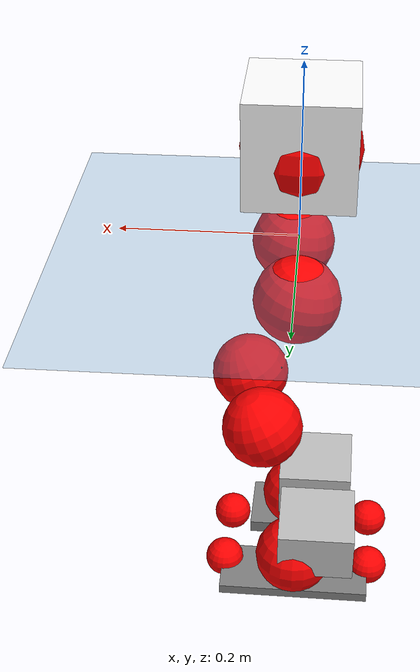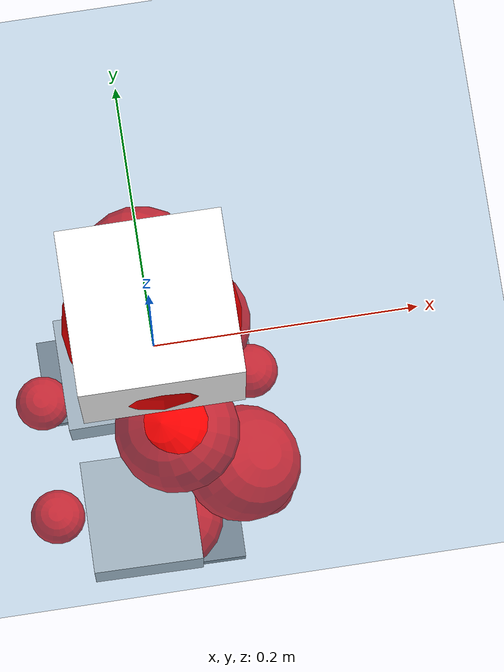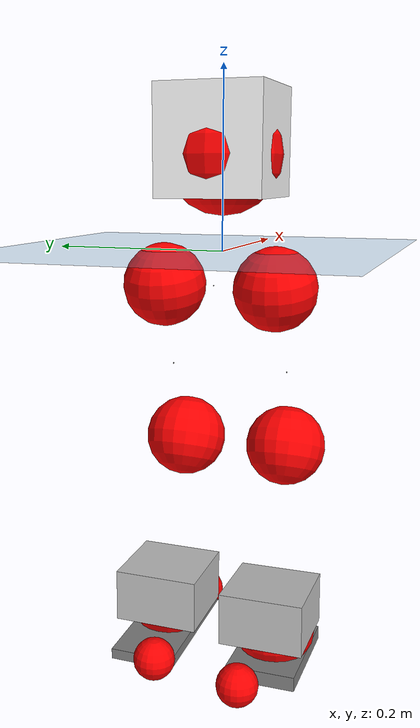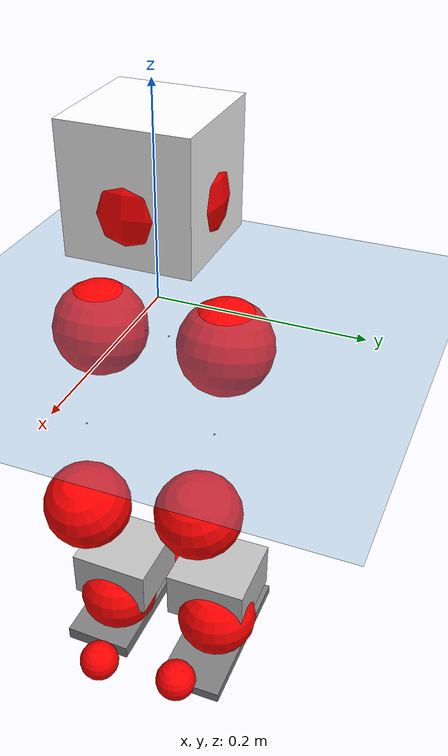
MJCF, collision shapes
<mujoco model="pi_12dof_release_v1">
  <compiler angle="radian" assetdir="assets" balanceinertia="true" inertiafromgeom="false"/>

  <option timestep="0.005" density="1.2" viscosity="2e-05"/>

  <size nkey="1"/>

  <visual>
    <quality shadowsize="8192"/>
    <map shadowclip="0.5"/>
  </visual>

  <default>
    <default class="/">
      <joint armature="0.01" damping="0.01" frictionloss="0.01"/>
      <geom contype="0" conaffinity="0" group="1" solref="-1000 -80"/>
      <site size="0.01 0.005 0.005" group="5"/>
      <general forcelimited="true" biastype="affine" gainprm="20" biasprm="0 -20 -0.5"/>
      <default class="foot">
        <geom size="0.0845 0.036 0.005" type="box" condim="6" group="4" priority="1" friction="0.9 0.2 0.2" solimp="0.015 1 0.005"/>
      </default>
      <default class="reward_collision_sphere">
        <geom group="5" rgba="1 0 0 1"/>
      </default>
    </default>
  </default>

  <asset>
    <texture type="skybox" colorspace="auto" name="//unnamed_texture_0" builtin="gradient" rgb1="0.95 0.95 0.95" rgb2="0.95 0.95 0.95" width="100" height="600"/>
    <texture type="2d" colorspace="auto" name="texplane" builtin="checker" rgb1="0.345 0.575 0.748" rgb2="0.345 0.575 0.748" markrgb="1 1 1" width="512" height="512"/>
    <material name="MatPlane" class="/" texture="texplane" texuniform="true" texrepeat="2 2" specular="0.9"/>
    <mesh name="baselink_1" class="/" file="baselink_1.STL"/>
    <mesh name="r_hip_pitch_link" class="/" file="r_hip_pitch_link.STL"/>
    <mesh name="r_hip_roll_link" class="/" file="r_hip_roll_link.STL"/>
    <mesh name="r_thigh_link" class="/" file="r_thigh_link.STL"/>
    <mesh name="r_calf_link" class="/" file="r_calf_link.STL"/>
    <mesh name="r_ankle_pitch_link" class="/" file="r_ankle_pitch_link.STL"/>
    <mesh name="r_ankle_roll_link" class="/" file="r_ankle_roll_link.STL"/>
    <mesh name="l_hip_pitch_link" class="/" file="l_hip_pitch_link.STL"/>
    <mesh name="l_hip_roll_link" class="/" file="l_hip_roll_link.STL"/>
    <mesh name="l_thigh_link" class="/" file="l_thigh_link.STL"/>
    <mesh name="l_calf_link" class="/" file="l_calf_link.STL"/>
    <mesh name="l_ankle_pitch_link" class="/" file="l_ankle_pitch_link.STL"/>
    <mesh name="l_ankle_roll_link" class="/" file="l_ankle_roll_link.STL"/>
  </asset>

  <worldbody>
    <geom name="floor" class="/" size="100 100 0.125" type="plane" group="0" material="MatPlane"/>
    <light name="toplight_shadow" class="/" pos="0 0 5" dir="0.0990148 0.0990148 -0.990148" type="directional" ambient="0.04 0.04 0.04" diffuse="0.55 0.55 0.55" specular="0.12 0.12 0.12"/>
    <light name="toplight_fill" class="/" pos="0 0 5" dir="0.0990148 0.0990148 -0.990148" type="directional" castshadow="false" ambient="0.04 0.04 0.04" diffuse="0.3 0.3 0.3" specular="0.08 0.08 0.08"/>
    <body name="trunk" pos="0.000314721 -0.000430604 0.00804841" quat="1 -0.000546759 -6.06784e-05 -0.000159387">
      <inertial pos="0.00386184 -0.0118905 0.0465175" quat="0.695642 0.00803667 0.0107671 0.718263" mass="3.82601" diaginertia="0.0422446 0.00398615 0.0218377"/>
      <joint name="//unnamed_joint_0" type="free"/>
      <geom name="//unnamed_geom_1" class="/" type="mesh" density="0" rgba="1 1 1 1" mesh="baselink_1"/>
      <geom name="//unnamed_geom_2" class="/" size="0.0596321 0.0596321 0.0596321" pos="0 0 0.110328" type="box" rgba="1 1 1 1"/>
      <geom name="//unnamed_geom_3" class="reward_collision_sphere" size="0.0655953" pos="0 0 0.0965371"/>
      <site name="imu" class="/" pos="-0.0177247 0.0302154 -0.0195586" size="0.0119264"/>
      <camera name="track" class="/" pos="0 -1.67623 0" quat="0.707107 0.707107 0 0" mode="trackcom"/>
      <camera name="ego_camera" class="/" pos="0.102053 0 0.248238" quat="-0.5 -0.5 0.5 0.5"/>
      <body name="r_hip_pitch_link" pos="0.00262995 -0.0125091 -0.0458694" quat="0.992131 0.000124001 -0.125198 -0.00105705">
        <inertial pos="0.0114513 -0.0478081 0.00536424" quat="-0.0205993 0.703873 -0.0290843 0.709432" mass="0.669431" diaginertia="0.00052177 4.50386e-05 0.000395237"/>
        <joint name="r_hip_pitch_joint" class="/" pos="0 0 0" axis="0.0346737 -0.998263 -0.0476389" range="-1.72607 1.40175" armature="0.0156939" damping="0.0375915" frictionloss="0.0170606"/>
        <geom name="//unnamed_geom_4" class="/" type="mesh" density="0" rgba="0.75294 0.75294 0.75294 1" mesh="r_hip_pitch_link"/>
        <geom name="//unnamed_geom_5" class="/" size="0.000596321 0.000596321 0.000596321" type="box" rgba="0.75294 0.75294 0.75294 1"/>
        <body name="r_hip_roll_link" pos="0.00447249 -0.0468089 -0.00495316" quat="1 0.000159256 -0.000114767 0.000363615">
          <inertial pos="-0.00229592 -0.00201209 -0.0779409" quat="0.702896 -0.0810825 -0.0812608 0.701968" mass="0.726163" diaginertia="0.00151155 0.000115685 0.000840396"/>
          <joint name="r_hip_roll_joint" class="/" pos="0 0 0" axis="-0.999062 -0.0430877 0.00422521" stiffness="0.0228749" range="-0.132679 0.490447" armature="0.0124008" damping="0.0738434" frictionloss="0.00818761"/>
          <geom name="//unnamed_geom_6" class="/" type="mesh" density="0" rgba="0.75294 0.75294 0.75294 1" mesh="r_hip_roll_link"/>
          <geom name="//unnamed_geom_7" class="/" size="0.000596321 0.000596321 0.000596321" type="box" rgba="0.75294 0.75294 0.75294 1"/>
          <geom name="//unnamed_geom_8" class="reward_collision_sphere" size="0.0477057"/>
          <body name="r_thigh_link" pos="0.00480939 -0.00780828 -0.104409" quat="0.999984 -0.0027155 0.00496405 -0.000118083">
            <inertial pos="-0.000371511 0.0010419 -0.0678122" quat="0.736429 0.676513 0.00107547 0.000400412" mass="0.221505" diaginertia="0.000574144 4.05536e-05 0.000321782"/>
            <joint name="r_thigh_joint" class="/" pos="0 0 0" axis="-0.0105088 -0.000213311 -0.999945" range="-0.285424 0.75221" armature="0.00608767" damping="0" frictionloss="0.0127611"/>
            <geom name="//unnamed_geom_9" class="/" type="mesh" density="0" rgba="0.75294 0.75294 0.75294 1" mesh="r_thigh_link"/>
            <geom name="//unnamed_geom_10" class="/" size="0.000596321 0.000596321 0.000596321" type="box" rgba="0.75294 0.75294 0.75294 1"/>
            <body name="r_calf_link" pos="-0.00359224 0.004263 -0.0970222" quat="0.948042 -0.00292981 0.318112 -0.00352589">
              <inertial pos="-0.00255092 -0.00163519 -0.0951688" quat="0.999984 0.0031632 0.00325431 0.00331073" mass="1.50821" diaginertia="0.0185201 0.00175339 0.000853381"/>
              <joint name="r_calf_joint" class="/" pos="0 0 0" axis="-0.0280322 -0.997829 0.0595997" range="-1.55698 0.666453" armature="0.012884" damping="0.00921322" frictionloss="0.0135543"/>
              <geom name="//unnamed_geom_11" class="/" type="mesh" density="0" rgba="0.75294 0.75294 0.75294 1" mesh="r_calf_link"/>
              <geom name="//unnamed_geom_12" class="/" size="0.000596321 0.000596321 0.000596321" type="box" rgba="0.75294 0.75294 0.75294 1"/>
              <geom name="//unnamed_geom_13" class="reward_collision_sphere" size="0.0477057"/>
              <body name="r_ankle_pitch_link" pos="-0.0127229 -0.00616334 -0.191557" quat="0.980321 -0.000384398 -0.197408 -0.000460733">
                <inertial pos="0.00738864 0.00347067 -0.000409736" quat="0.00451787 0.707756 0.00427692 0.706429" mass="0.26691" diaginertia="0.00137207 8.12839e-05 0.000491737"/>
                <joint name="r_ankle_pitch_joint" class="/" pos="0 0 0" axis="0.0247471 -0.999663 0.00789448" stiffness="0.0233472" range="-1.1543 0.407365" armature="0.0114861" damping="0" frictionloss="0.00598284"/>
                <geom name="//unnamed_geom_14" class="/" type="mesh" density="0" rgba="0.75294 0.75294 0.75294 1" mesh="r_ankle_pitch_link"/>
                <geom name="//unnamed_geom_15" class="/" size="0.046513 0.0477057 0.029816" type="box" rgba="0.75294 0.75294 0.75294 1"/>
                <body name="r_ankle_roll_link" pos="0.0907514 0.000722698 -0.00595535" quat="1 0.00017491 0.000158243 -0.00063578">
                  <inertial pos="-0.0283399 0.00210682 -0.0324268" quat="0.569577 0.432305 0.425006 0.555035" mass="1.04655" diaginertia="0.0049306 0.000427053 0.00141457"/>
                  <joint name="r_ankle_roll_joint" class="/" pos="0 0 0" axis="-0.999966 -0.00760673 -0.00312719" range="-0.157481 0.173567" armature="0.0116278" damping="0.00207197" frictionloss="0.00423777"/>
                  <geom name="//unnamed_geom_16" class="/" type="mesh" density="0" rgba="0.75294 0.75294 0.75294 1" mesh="r_ankle_roll_link"/>
                  <geom name="//unnamed_geom_17" class="/" type="mesh" rgba="0.75294 0.75294 0.75294 1" mesh="r_ankle_roll_link"/>
                  <geom name="right_foot" class="foot" size="0.0637584 0.0401157 0.00832757" pos="-0.0693962 0 -0.0606804"/>
                  <geom name="//unnamed_geom_19" class="reward_collision_sphere" size="0.0477057" pos="-0.0680355 0 -0.027582"/>
                  <geom name="//unnamed_geom_20" class="reward_collision_sphere" size="0.0238528" pos="0.0204106 0.0167623 -0.055164"/>
                  <geom name="//unnamed_geom_21" class="reward_collision_sphere" size="0.0238528" pos="-0.163285 0.0167623 -0.055164"/>
                  <site name="right_foot" class="foot" pos="-0.0693962 0 -0.0606804" size="0.0119264"/>
                </body>
              </body>
            </body>
          </body>
        </body>
      </body>
      <body name="l_hip_pitch_link" pos="0.00190489 0.011161 -0.0472786" quat="0.992187 6.00167e-05 -0.124758 8.89445e-05">
        <inertial pos="0.00655085 0.0555385 -0.00136828" quat="0.0279855 0.712991 0.0445389 0.699197" mass="0.768906" diaginertia="0.000570011 3.92997e-05 0.000529938"/>
        <joint name="l_hip_pitch_joint" class="/" pos="0 0 0" axis="0.0056273 0.999923 0.0110715" range="-1.42904 1.9745" armature="0.00761148" damping="0" frictionloss="0.0177415"/>
        <geom name="//unnamed_geom_22" class="/" type="mesh" density="0" rgba="0.75294 0.75294 0.75294 1" mesh="l_hip_pitch_link"/>
        <geom name="//unnamed_geom_23" class="/" size="0.000596321 0.000596321 0.000596321" type="box" rgba="0.75294 0.75294 0.75294 1"/>
        <body name="l_hip_roll_link" pos="-0.00347099 0.0577132 0.000535046" quat="0.999996 0.00034672 -0.000472655 0.00282433">
          <inertial pos="0.000620676 0.00808505 -0.0862157" quat="0.693682 -0.0877275 -0.0930932 0.708832" mass="0.630975" diaginertia="0.00135142 0.000105876 0.000512641"/>
          <joint name="l_hip_roll_joint" class="/" pos="0 0 0" axis="-0.999698 -0.0141844 0.0200718" stiffness="0.0146997" range="-0.763674 0.345802" armature="0.0101565" damping="0" frictionloss="0.0119661"/>
          <geom name="//unnamed_geom_24" class="/" type="mesh" density="0" rgba="0.75294 0.75294 0.75294 1" mesh="l_hip_roll_link"/>
          <geom name="//unnamed_geom_25" class="/" size="0.000596321 0.000596321 0.000596321" type="box" rgba="0.75294 0.75294 0.75294 1"/>
          <geom name="//unnamed_geom_26" class="reward_collision_sphere" size="0.0477057"/>
          <body name="l_thigh_link" pos="-0.00891586 -0.00466148 -0.0959715" quat="0.999989 0.00439723 0.00122365 0.00146683">
            <inertial pos="-0.00892361 0.00240873 -0.0579106" quat="0.675097 0.737729 -0.000620526 -0.000107082" mass="0.179067" diaginertia="0.000500884 2.7896e-05 0.000197887"/>
            <joint name="l_thigh_joint" class="/" pos="0 0 0" axis="0.0117652 0.00103596 -0.99993" stiffness="0.00329891" range="-0.65282 0.494916" armature="0.0149678" damping="0" frictionloss="0.0167481"/>
            <geom name="//unnamed_geom_27" class="/" type="mesh" density="0" rgba="0.75294 0.75294 0.75294 1" mesh="l_thigh_link"/>
            <geom name="//unnamed_geom_28" class="/" size="0.000596321 0.000596321 0.000596321" type="box" rgba="0.75294 0.75294 0.75294 1"/>
            <body name="l_calf_link" pos="-0.00218545 -0.00900402 -0.0963258" quat="0.949076 0.00114826 0.315038 -0.00221054">
              <inertial pos="-0.00138777 -0.00217415 -0.0913238" quat="0.997762 0.0112889 -0.0648601 0.0117317" mass="1.55421" diaginertia="0.0163773 0.00168618 0.000943462"/>
              <joint name="l_calf_joint" class="/" pos="0 0 0" axis="-0.00557486 0.999958 0.00729573" range="-0.689244 1.75736" armature="0.0111024" damping="0" frictionloss="0.0161746"/>
              <geom name="//unnamed_geom_29" class="/" type="mesh" density="0" rgba="0.75294 0.75294 0.75294 1" mesh="l_calf_link"/>
              <geom name="//unnamed_geom_30" class="/" size="0.000596321 0.000596321 0.000596321" type="box" rgba="0.75294 0.75294 0.75294 1"/>
              <geom name="//unnamed_geom_31" class="reward_collision_sphere" size="0.0477057"/>
              <body name="l_ankle_pitch_link" pos="0.000920414 -0.00370105 -0.181026" quat="0.980083 2.63736e-05 -0.198589 3.0737e-05">
                <inertial pos="0.00641474 -0.0141059 -0.00625661" quat="-0.0050119 0.677204 0.0209341 0.73548" mass="0.343273" diaginertia="0.00166014 0.000105335 0.000696594"/>
                <joint name="l_ankle_pitch_joint" class="/" pos="0 0 0" axis="-0.0268655 0.998323 0.0512748" range="-0.558028 1.33881" armature="0.0127027" damping="0.0506412" frictionloss="0.0130952"/>
                <geom name="//unnamed_geom_32" class="/" type="mesh" density="0" rgba="0.75294 0.75294 0.75294 1" mesh="l_ankle_pitch_link"/>
                <geom name="//unnamed_geom_33" class="/" size="0.046513 0.0477057 0.029816" type="box" rgba="0.75294 0.75294 0.75294 1"/>
                <body name="l_ankle_roll_link" pos="0.0952109 0.00915527 -0.00286191" quat="0.999991 0.00212661 -0.00357309 -0.000455518">
                  <inertial pos="-0.037822 -0.00168886 -0.021064" quat="0.514901 0.437255 0.42972 0.599187" mass="1.06963" diaginertia="0.00554711 0.00047291 0.00125606"/>
                  <joint name="l_ankle_roll_joint" class="/" pos="0 0 0" axis="-0.997778 -0.0659854 -0.00922239" stiffness="0.0191256" range="-0.182307 0.427123" armature="0.0128047" damping="0.00451159" frictionloss="0.0197975"/>
                  <geom name="//unnamed_geom_34" class="/" type="mesh" density="0" rgba="0.75294 0.75294 0.75294 1" mesh="l_ankle_roll_link"/>
                  <geom name="//unnamed_geom_35" class="/" type="mesh" rgba="0.75294 0.75294 0.75294 1" mesh="l_ankle_roll_link"/>
                  <geom name="left_foot" class="foot" size="0.0922553 0.0368683 0.0060205" pos="-0.0693962 0 -0.0606804"/>
                  <geom name="//unnamed_geom_37" class="reward_collision_sphere" size="0.0477057" pos="-0.0680355 0 -0.027582"/>
                  <geom name="//unnamed_geom_38" class="reward_collision_sphere" size="0.0238528" pos="0.0204106 -0.0167623 -0.055164"/>
                  <geom name="//unnamed_geom_39" class="reward_collision_sphere" size="0.0238528" pos="-0.163285 -0.0167623 -0.055164"/>
                  <site name="left_foot" class="foot" pos="-0.0693962 0 -0.0606804" size="0.0119264"/>
                </body>
              </body>
            </body>
          </body>
        </body>
      </body>
    </body>
  </worldbody>

  <contact>
    <pair class="/" geom1="floor" geom2="right_foot" name="//unnamed_contact_1"/>
    <pair class="/" geom1="floor" geom2="left_foot" name="//unnamed_contact_0"/>
  </contact>

  <actuator>
    <general name="r_hip_pitch_joint" class="/" joint="r_hip_pitch_joint" forcerange="-32.6849 32.6849" gainprm="26.4785" biasprm="0 -26.4785 -0.579767"/>
    <general name="r_hip_roll_joint" class="/" joint="r_hip_roll_joint" forcerange="-25.7978 25.7978" gainprm="26.4785" biasprm="0 -26.4785 -0.579767"/>
    <general name="r_thigh_joint" class="/" joint="r_thigh_joint" forcerange="-31.4998 31.4998" gainprm="26.4785" biasprm="0 -26.4785 -0.579767"/>
    <general name="r_calf_joint" class="/" joint="r_calf_joint" forcerange="-21.7709 21.7709" gainprm="26.4785" biasprm="0 -26.4785 -0.579767"/>
    <general name="r_ankle_pitch_joint" class="/" joint="r_ankle_pitch_joint" forcerange="-18.3071 18.3071" gainprm="26.4785" biasprm="0 -26.4785 -0.579767"/>
    <general name="r_ankle_roll_joint" class="/" joint="r_ankle_roll_joint" forcerange="-14.6838 14.6838" gainprm="26.4785" biasprm="0 -26.4785 -0.579767"/>
    <general name="l_hip_pitch_joint" class="/" joint="l_hip_pitch_joint" forcerange="-30.8412 30.8412" gainprm="26.4785" biasprm="0 -26.4785 -0.579767"/>
    <general name="l_hip_roll_joint" class="/" joint="l_hip_roll_joint" forcerange="-37.3429 37.3429" gainprm="26.4785" biasprm="0 -26.4785 -0.579767"/>
    <general name="l_thigh_joint" class="/" joint="l_thigh_joint" forcerange="-22.8739 22.8739" gainprm="26.4785" biasprm="0 -26.4785 -0.579767"/>
    <general name="l_calf_joint" class="/" joint="l_calf_joint" forcerange="-27.8222 27.8222" gainprm="26.4785" biasprm="0 -26.4785 -0.579767"/>
    <general name="l_ankle_pitch_joint" class="/" joint="l_ankle_pitch_joint" forcerange="-21.6507 21.6507" gainprm="26.4785" biasprm="0 -26.4785 -0.579767"/>
    <general name="l_ankle_roll_joint" class="/" joint="l_ankle_roll_joint" forcerange="-29.7642 29.7642" gainprm="26.4785" biasprm="0 -26.4785 -0.579767"/>
  </actuator>

  <sensor>
    <gyro site="imu" name="imu_angular_velocity"/>
    <velocimeter site="imu" name="imu_linear_velocity"/>
    <framelinvel objtype="site" objname="left_foot" name="left_foot_global_linear_velocity"/>
    <framelinvel objtype="site" objname="right_foot" name="right_foot_global_linear_velocity"/>
  </sensor>

  <keyframe>
    <key name="home" qpos="0 0 0.291 1 0 0 0 0.4 0 0 -0.8 0.4 0 -0.4 0 0 0.8 -0.4 0"/>
  </keyframe>
</mujoco>
